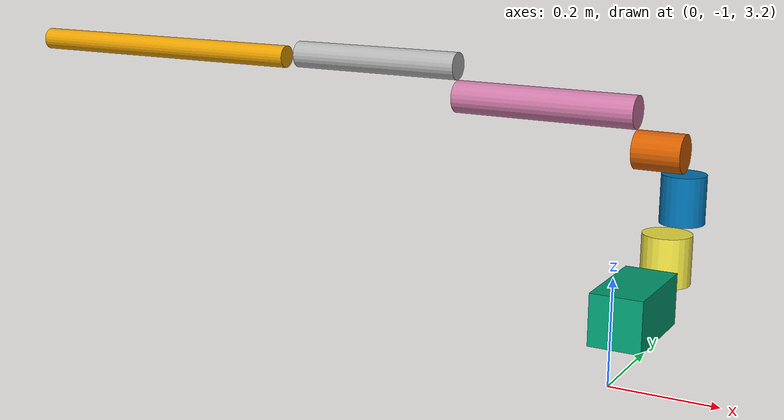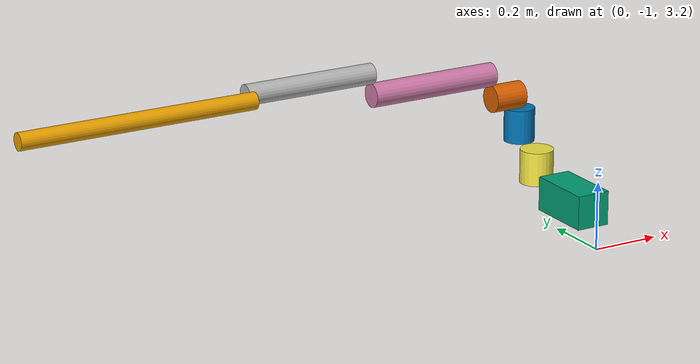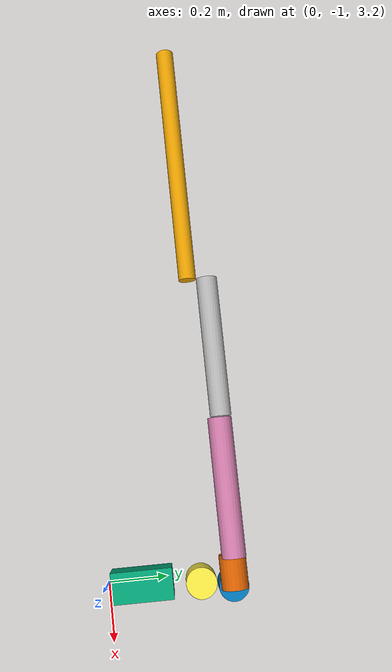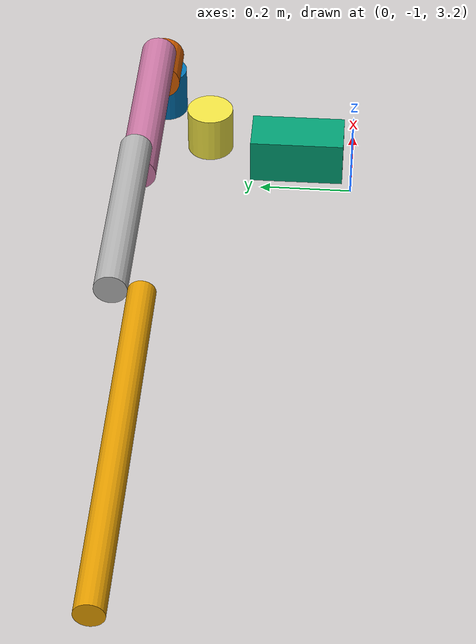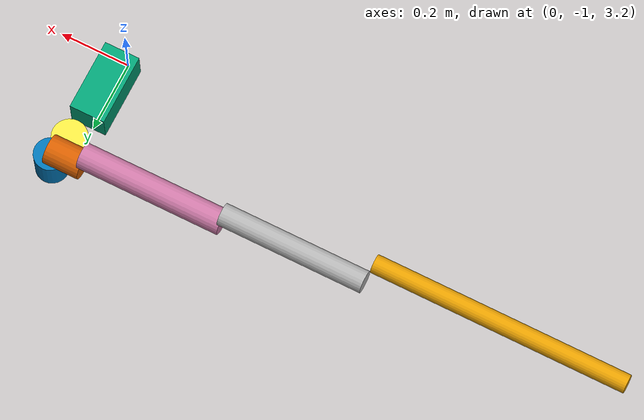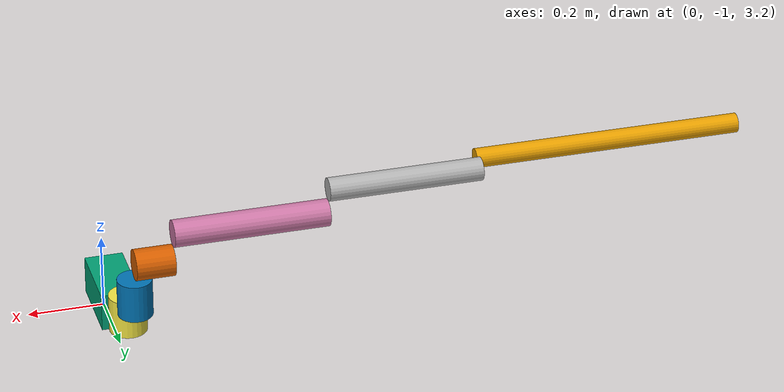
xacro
<?xml version="1.0"?>
<robot xmlns:xacro="http://wiki.ros.org/xacro"  name="arm">
  <xacro:include filename="$(find man_gazebo)/urdf/common.gazebo.xacro" />

<link name="world" />

  <joint name="world_joint" type="fixed">
    <parent link="world" />
    <child link = "base_link" />
    <origin xyz="0 -1 0" rpy="0.0 0.0 0.0" />
  </joint>

  <xacro:include filename="$(find man_gazebo)/urdf/6dof/transmission_6dof.xacro" />
  <xacro:include filename="$(find man_gazebo)/urdf/gazebo.xacro" />

  <xacro:macro name="cylinder_inertial" params="radius length mass *origin">
    <inertial>
      <mass value="${mass}" />
      <xacro:insert_block name="origin" />
      <inertia ixx="${0.0833333 * mass * (3 * radius * radius + length * length)}" ixy="0.0" ixz="0.0"
        iyy="${0.0833333 * mass * (3 * radius * radius + length * length)}" iyz="0.0"
        izz="${0.5 * mass * radius * radius}" />
    </inertial>
  </xacro:macro>

<xacro:macro name="joint_limit" params="joint_type link_length ">
	<xacro:if value="${joint_type == 'revolute'}"  >
		<xacro:property name="joint_upper_limit" value="${pi}" />
		<xacro:property name="joint_lower_limit" value="${-pi}" />
	</xacro:if>
	<xacro:unless value="${joint_type == 'revolute'}"  >
		<xacro:property name="joint_upper_limit" value="${link_length}" />
		<xacro:property name="joint_lower_limit" value="${0}" />
	</xacro:unless>
	<limit lower="${joint_lower_limit}" upper="${joint_upper_limit}" effort="150.0" velocity="3.15"/>
</xacro:macro>

  <xacro:macro name="arm_robot" params="prefix ">
        <xacro:property name="base_length" value="3.25"/>
        <xacro:property name="base_radius" value="0.060" />
        <xacro:property name="link0_radius" value="0.060" />
            <!-- Inertia parameters -->
        <xacro:property name="base_mass" value="1.0" />
        <xacro:property name="link0_mass" value="40.7" />
        <xacro:property name="link1_mass" value="3.7" />
        <xacro:property name="link2_mass" value="5.17" />
        <xacro:property name="link3_mass" value="0.88" />
        <xacro:property name="link4_mass" value="3.52" />
        <xacro:property name="link5_mass" value="3.51" />
        <xacro:property name="link6_mass" value="6.16" />

        <xacro:property name="link1_radius" value="0.049" />
        <xacro:property name="link2_radius" value="0.045" />
        <xacro:property name="link3_radius" value="0.040" />
        <xacro:property name="link4_radius" value="0.035" />
        <xacro:property name="link5_radius" value="0.030" />
        <xacro:property name="link6_radius" value="0.025" />

        	<!--   Base Link -->
    <link name="${prefix}base_link" >

      <collision>
			<origin xyz="0 0 ${base_length/2}" rpy="0 0 0" />
        <geometry>
			<cylinder radius="${base_radius}" length="${base_length}"/>
        </geometry>
      </collision>
      <xacro:cylinder_inertial radius="${base_radius}" length="${base_length}" mass="${base_mass}">
        <origin xyz="0.0 0.0 ${base_length/2}" rpy="0 0 0" />
      </xacro:cylinder_inertial>
    </link>

    <xacro:property name="joint0_type" value="prismatic" />
    <xacro:property name="joint0_axe" value="0 0 1" />
    <xacro:property name="link0_length" value="0.25" />
<!--  joint 0	-->
    <joint name="${prefix}joint0" type="${joint0_type}">
      <parent link="${prefix}base_link" />
      <child link = "${prefix}link0" />
      <origin xyz="0.0 ${base_radius} ${base_length + link0_radius}" rpy="${-pi/2} 0.0 0" />
      <axis xyz="${joint0_axe}" />
	  <xacro:joint_limit joint_type="${joint0_type}" link_length="${link0_length*6}"/>
      <dynamics damping="0.0" friction="0.0"/>
    </joint>

<!--  link 0  -->
    <link name="${prefix}link0">
      <visual>
		<origin xyz="0 0 ${link0_radius} " rpy="0 0 0" />
        <geometry>
            <box size="0.1 0.1 0.2"/>
        </geometry>
      </visual>
      <collision>
		 <origin xyz="0 0 ${link0_radius}" rpy="0 0 0" />
        <geometry>
			 <box size="0.1 0.1 0.2"/>
        </geometry>
      </collision>
      <xacro:cylinder_inertial radius="${link0_radius}" length="${link0_length}" mass="${link0_mass}">
        <origin xyz="0.0 0.0 ${link0_length/2}" rpy="0 0 0" />
      </xacro:cylinder_inertial>
    </link>

<xacro:property name="joint1_type" value="revolute"/>
<xacro:property name="joint1_axe" value="0 0 1"/>
<xacro:property name="link1_length" value="0.1"/>
<!--  joint 1	-->
    <joint name="${prefix}joint1" type="${joint1_type}">
      <parent link="${prefix}link0" />
      <child link="${prefix}link1" />
      <origin xyz="0.0 0.0 ${link0_length}" rpy="${pi/2} 0.0 0.0" />
      <axis xyz="${joint1_axe}"/>
	  <xacro:joint_limit joint_type="${joint1_type}" link_length="${link1_length}"/>
      <dynamics damping="0.0" friction="0.0"/>
    </joint>
    <!--  link 1  -->
    <link name="${prefix}link1">
      <visual>
		<origin xyz="0 0 ${link1_length / 2} " rpy="0 0 0" />
        <geometry>
			<cylinder radius="${link1_radius}" length="${link1_length}"/>
        </geometry>
      </visual>
      <collision>
		 <origin xyz="0 0 ${link1_length / 2}" rpy="0 0 0" />
        <geometry>
			<cylinder radius="${link1_radius}" length="${link1_length}"/>
        </geometry>
      </collision>
      <xacro:cylinder_inertial radius="${link1_radius}" length="${link1_length}" mass="${link1_mass}">
        <origin xyz="0.0 0.0 ${link1_length / 2}" rpy="0 0 0" />
      </xacro:cylinder_inertial>
    </link>
<xacro:property name="joint2_type" value="revolute"/>
<xacro:property name="joint2_axe" value="0 1 0"/>
<xacro:property name="link2_length" value="0.1"/>
<!--  joint 2	-->
    <joint name="${prefix}joint2" type="${joint2_type}">
      <parent link="${prefix}link1"/>
      <child link="${prefix}link2" />
      <origin xyz="0 ${link1_radius+link2_radius} ${link1_length}" rpy="0 0 0 "/>
      <axis xyz="${joint2_axe}"/>
	  <xacro:joint_limit joint_type="${joint2_type}" link_length="${link2_length}"/>
      <dynamics damping="0.0" friction="0.0"/>
    </joint>
    <!-- link 2	-->
    <link name="${prefix}link2">
      <visual>
		<origin xyz="0 0 ${link2_length / 2}" rpy="0 0 0" />
        <geometry>
			<cylinder radius="${link2_radius}" length="${link2_length}"/>
        </geometry>
      </visual>
      <collision>
	    <origin xyz="0 0 ${link2_length / 2 }" rpy="0 0 0" />
        <geometry>
		    <cylinder radius="${link2_radius}" length="${link2_length}"/>
        </geometry>
      </collision>
      <xacro:cylinder_inertial radius="${link2_radius}" length="${link2_length}" mass="${link2_mass}">
        <origin xyz="0.0 0.0 ${link2_length / 2 }" rpy="0 0 0" />
      </xacro:cylinder_inertial>
    </link>
<xacro:property name="joint3_type" value="prismatic"/>
<xacro:property name="joint3_axe" value="0 0 1"/>
<xacro:property name="link3_length" value="0.1"/>
<!--  joint 3	-->
    <joint name="${prefix}joint3" type="${joint3_type}">
      <parent link="${prefix}link2"/>
      <child link="${prefix}link3" />
      <origin xyz="0 0 ${link2_length + link3_radius}" rpy="0 ${-pi/2} 0 "/>
      <axis xyz="${joint3_axe}"/>
	  <xacro:joint_limit joint_type="${joint3_type}" link_length="${link3_length}"/>
      <dynamics damping="0.0" friction="0.0"/>
    </joint>
    <!-- link 3	-->
    <link name="${prefix}link3">
      <visual>
		<origin xyz="0 0 ${link3_length / 2}" rpy="0 0 0" />
        <geometry>
			<cylinder radius="${link3_radius}" length="${link3_length}"/>
        </geometry>
      </visual>
      <collision>
	    <origin xyz="0 0 ${link3_length / 2 }" rpy="0 0 0" />
        <geometry>
		    <cylinder radius="${link3_radius}" length="${link3_length}"/>
        </geometry>
      </collision>
      <xacro:cylinder_inertial radius="${link3_radius}" length="${link3_length}" mass="${link3_mass}">
        <origin xyz="0.0 0.0 ${link3_length / 2 }" rpy="0 0 0" />
      </xacro:cylinder_inertial>
    </link>
<xacro:property name="joint4_type" value="revolute"/>
<xacro:property name="joint4_axe" value="0 1 0"/>
<xacro:property name="link4_length" value="0.4"/>
<!--  joint 4	-->
    <joint name="${prefix}joint4" type="${joint4_type}">
      <parent link="${prefix}link3"/>
      <child link="${prefix}link4" />
      <origin xyz=" ${link3_radius+link4_radius} 0 ${link3_length}" rpy="0 0 ${-pi/2} "/>
      <axis xyz="${joint4_axe}"/>
	  <xacro:joint_limit joint_type="${joint4_type}" link_length="${link4_length}"/>
      <dynamics damping="0.0" friction="0.0"/>
    </joint>
    <!-- link 4	-->
    <link name="${prefix}link4">
      <visual>
		<origin xyz="0 0 ${link4_length / 2}" rpy="0 0 0" />
        <geometry>
			<cylinder radius="${link4_radius}" length="${link4_length}"/>
        </geometry>
      </visual>
      <collision>
	    <origin xyz="0 0 ${link4_length / 2 }" rpy="0 0 0" />
        <geometry>
		    <cylinder radius="${link4_radius}" length="${link4_length}"/>
        </geometry>
      </collision>
      <xacro:cylinder_inertial radius="${link4_radius}" length="${link4_length}" mass="${link4_mass}">
        <origin xyz="0.0 0.0 ${link4_length / 2 }" rpy="0 0 0" />
      </xacro:cylinder_inertial>
    </link>
<xacro:property name="joint5_type" value="revolute"/>
<xacro:property name="joint5_axe" value="0 1 0"/>
<xacro:property name="link5_length" value="0.4"/>
<!--  joint 5	-->
    <joint name="${prefix}joint5" type="${joint5_type}">
      <parent link="${prefix}link4"/>
      <child link="${prefix}link5" />
      <origin xyz="0 ${link4_radius+link5_radius} ${link4_length}" rpy="0 0 0 "/>
      <axis xyz="${joint5_axe}"/>
	  <xacro:joint_limit joint_type="${joint5_type}" link_length="${link5_length}"/>
      <dynamics damping="0.0" friction="0.0"/>
    </joint>
    <!-- link 5	-->
    <link name="${prefix}link5">
      <visual>
		<origin xyz="0 0 ${link5_length / 2}" rpy="0 0 0" />
        <geometry>
			<cylinder radius="${link5_radius}" length="${link5_length}"/>
        </geometry>
      </visual>
      <collision>
	    <origin xyz="0 0 ${link5_length / 2 }" rpy="0 0 0" />
        <geometry>
		    <cylinder radius="${link5_radius}" length="${link5_length}"/>
        </geometry>
      </collision>
      <xacro:cylinder_inertial radius="${link5_radius}" length="${link5_length}" mass="${link5_mass}">
        <origin xyz="0.0 0.0 ${link5_length / 2 }" rpy="0 0 0" />
      </xacro:cylinder_inertial>
    </link>
<xacro:property name="joint6_type" value="revolute"/>
<xacro:property name="joint6_axe" value="0 1 0"/>
<xacro:property name="link6_length" value="0.7"/>
<!--  joint 6	-->
    <joint name="${prefix}joint6" type="${joint6_type}">
      <parent link="${prefix}link5"/>
      <child link="${prefix}link6" />
      <origin xyz=" ${link5_radius+link6_radius} 0 ${link5_length}" rpy="0 0 ${-pi/2} "/>
      <axis xyz="${joint6_axe}"/>
	  <xacro:joint_limit joint_type="${joint6_type}" link_length="${link6_length}"/>
      <dynamics damping="0.0" friction="0.0"/>
    </joint>
    <!-- link 6	-->
    <link name="${prefix}link6">
      <visual>
		<origin xyz="0 0 ${link6_length / 2}" rpy="0 0 0" />
        <geometry>
			<cylinder radius="${link6_radius}" length="${link6_length}"/>
        </geometry>
      </visual>
      <collision>
	    <origin xyz="0 0 ${link6_length / 2 }" rpy="0 0 0" />
        <geometry>
		    <cylinder radius="${link6_radius}" length="${link6_length}"/>
        </geometry>
      </collision>
      <xacro:cylinder_inertial radius="${link6_radius}" length="${link6_length}" mass="${link6_mass}">
        <origin xyz="0.0 0.0 ${link6_length / 2 }" rpy="0 0 0" />
      </xacro:cylinder_inertial>
    </link>
         <!-- fake joint - the rotation about z axe of the camera is not important -->
        <joint name="fake_joint" type="revolute">
      <parent link="${prefix}link6" />
      <child link = "camera_link" />
      <origin xyz="0.0  0.0 ${link6_length}" rpy="0.0 0.0 0" />
      <axis xyz="0 0 1"/>
      <xacro:joint_limit joint_type="revolute" link_length="0.1"/>
      <dynamics damping="0.0" friction="0.0"/>
        </joint>

    <!-- camera link -->
        <link name="camera_link">
          <collision>
            <geometry>
              <box size="0.01 0.01 0.01"/>
            </geometry>
            <origin rpy="0 0 0" xyz="0 0 0.005"/>
          </collision>
          <xacro:cylinder_inertial radius="0.01" length="0.01" mass="0.01">
            <origin xyz="0.0 0.0 0.005" rpy="0 0 0" />
          </xacro:cylinder_inertial>
        </link>

        <!-- ee joint -->
    <joint name="${prefix}ee_fixed_joint" type="fixed">
      <parent link="camera_link" />
      <child link = "${prefix}ee_link" />
      <origin xyz="0.0  0.0 0.01" rpy="0.0 0.0 0" />
    </joint>

<!-- ee link -->
    <link name="${prefix}ee_link">
      <collision>
        <geometry>
          <box size="0.01 0.01 0.01"/>
        </geometry>
        <origin rpy="0 0 0" xyz="0 0 0.005"/>
      </collision>
    </link>

    <xacro:arm_transmission prefix="${prefix}" />
    <xacro:arm_gazebo prefix="${prefix}" />

  </xacro:macro>
  <xacro:arm_robot prefix=""/>
</robot>
